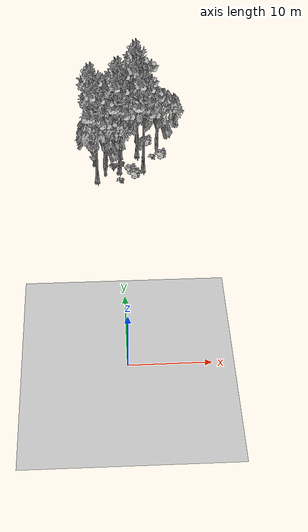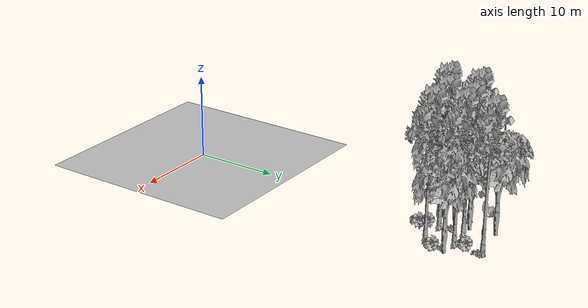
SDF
<sdf version="1.7">
 <world name="default">
  <model name="ground_plane">
   <static>1</static>
   <link name="link">
    <collision name="collision">
     <pose>-50 0 0 0 -0 0</pose>
     <geometry><plane><normal>0 0 1</normal><size>80 80</size></plane></geometry>
     <surface><contact><ode><min_depth>0.01</min_depth><max_vel>0</max_vel></ode></contact></surface>
    </collision>
    <visual name="grass">
     <cast_shadows>0</cast_shadows>
     <geometry>
      <mesh>
       <scale>0.46714285714285714 0.46714285714285714 0.1</scale>
       <uri>file://grass_plane/meshes/grass_plane.dae</uri>
      </mesh>
     </geometry>
    </visual>
   </link>
  </model>
  <model name="Tree 6">
   <static>1</static>
   <pose>5.54850643241091 36.19368127252207 0 1.57079 -0 0</pose>
   <link name="link">
    <collision name="collision">
     <geometry><mesh><scale>3.5 5 3.5</scale><uri>model://tree_2/meshes/tree_2.obj</uri></mesh></geometry>
    </collision>
    <visual name="visual">
     <geometry><mesh><scale>3.5 5 3.5</scale><uri>model://tree_2/meshes/tree_2.obj</uri></mesh></geometry>
    </visual>
   </link>
  </model>
  <model name="Tree 29">
   <static>1</static>
   <pose>0.2843903582047531 35.689766550181815 0 1.57079 -0 0</pose>
   <link name="link">
    <collision name="collision">
     <geometry><mesh><scale>3.5 5 3.5</scale><uri>model://tree_9/meshes/tree_9.obj</uri></mesh></geometry>
    </collision>
    <visual name="visual">
     <geometry><mesh><scale>3.5 5 3.5</scale><uri>model://tree_9/meshes/tree_9.obj</uri></mesh></geometry>
    </visual>
   </link>
  </model>
  <model name="Tree 128">
   <static>1</static>
   <pose>-1.2649494384611657 38.75790974704431 0 1.57079 -0 0</pose>
   <link name="link">
    <collision name="collision">
     <geometry><mesh><scale>3.5 5 3.5</scale><uri>model://tree_2/meshes/tree_2.obj</uri></mesh></geometry>
    </collision>
    <visual name="visual">
     <geometry><mesh><scale>3.5 5 3.5</scale><uri>model://tree_2/meshes/tree_2.obj</uri></mesh></geometry>
    </visual>
   </link>
  </model>
  <model name="Tree 146">
   <static>1</static>
   <pose>2.8871160726819625 39.34626958069252 0 1.57079 -0 0</pose>
   <link name="link">
    <collision name="collision">
     <geometry><mesh><scale>3.5 5 3.5</scale><uri>model://tree_9/meshes/tree_9.obj</uri></mesh></geometry>
    </collision>
    <visual name="visual">
     <geometry><mesh><scale>3.5 5 3.5</scale><uri>model://tree_9/meshes/tree_9.obj</uri></mesh></geometry>
    </visual>
   </link>
  </model>
  <model name="Tree 150">
   <static>1</static>
   <pose>0.07418841122362352 32.618755903432216 0 1.57079 -0 0</pose>
   <link name="link">
    <collision name="collision">
     <geometry><mesh><scale>3.5 5 3.5</scale><uri>model://tree_9/meshes/tree_9.obj</uri></mesh></geometry>
    </collision>
    <visual name="visual">
     <geometry><mesh><scale>3.5 5 3.5</scale><uri>model://tree_9/meshes/tree_9.obj</uri></mesh></geometry>
    </visual>
   </link>
  </model>
  <model name="Tree 151">
   <static>1</static>
   <pose>-3.1617049069283283 30.87712051281109 0 1.57079 -0 0</pose>
   <link name="link">
    <collision name="collision">
     <geometry><mesh><scale>3.5 5 3.5</scale><uri>model://tree_9/meshes/tree_9.obj</uri></mesh></geometry>
    </collision>
    <visual name="visual">
     <geometry><mesh><scale>3.5 5 3.5</scale><uri>model://tree_9/meshes/tree_9.obj</uri></mesh></geometry>
    </visual>
   </link>
  </model>
  <model name="Tree 168">
   <static>1</static>
   <pose>-3.432380097467764 34.47312382363589 0 1.57079 -0 0</pose>
   <link name="link">
    <collision name="collision">
     <geometry><mesh><scale>3.5 5 3.5</scale><uri>model://tree_9/meshes/tree_9.obj</uri></mesh></geometry>
    </collision>
    <visual name="visual">
     <geometry><mesh><scale>3.5 5 3.5</scale><uri>model://tree_9/meshes/tree_9.obj</uri></mesh></geometry>
    </visual>
   </link>
  </model>
  <model name="Tree 217">
   <static>1</static>
   <pose>-0.7691833623099953 35.87514678876724 0 1.57079 -0 0</pose>
   <link name="link">
    <collision name="collision">
     <geometry><mesh><scale>3.5 5 3.5</scale><uri>model://tree_2/meshes/tree_2.obj</uri></mesh></geometry>
    </collision>
    <visual name="visual">
     <geometry><mesh><scale>3.5 5 3.5</scale><uri>model://tree_2/meshes/tree_2.obj</uri></mesh></geometry>
    </visual>
   </link>
  </model>
  <model name="Tree 386">
   <static>1</static>
   <pose>2.7415290600496363 35.917225904051676 0 1.57079 -0 0</pose>
   <link name="link">
    <collision name="collision">
     <geometry><mesh><scale>3.5 5 3.5</scale><uri>model://tree_9/meshes/tree_9.obj</uri></mesh></geometry>
    </collision>
    <visual name="visual">
     <geometry><mesh><scale>3.5 5 3.5</scale><uri>model://tree_9/meshes/tree_9.obj</uri></mesh></geometry>
    </visual>
   </link>
  </model>
  <model name="Tree 524">
   <static>1</static>
   <pose>-1.8874023858698052 33.447720292214655 0 1.57079 -0 0</pose>
   <link name="link">
    <collision name="collision">
     <geometry><mesh><scale>3.5 5 3.5</scale><uri>model://tree_2/meshes/tree_2.obj</uri></mesh></geometry>
    </collision>
    <visual name="visual">
     <geometry><mesh><scale>3.5 5 3.5</scale><uri>model://tree_2/meshes/tree_2.obj</uri></mesh></geometry>
    </visual>
   </link>
  </model>
  <model name="Tree 545">
   <static>1</static>
   <pose>3.498447844496674 32.83100219406958 0 1.57079 -0 0</pose>
   <link name="link">
    <collision name="collision">
     <geometry><mesh><scale>3.5 5 3.5</scale><uri>model://tree_9/meshes/tree_9.obj</uri></mesh></geometry>
    </collision>
    <visual name="visual">
     <geometry><mesh><scale>3.5 5 3.5</scale><uri>model://tree_9/meshes/tree_9.obj</uri></mesh></geometry>
    </visual>
   </link>
  </model>
  <model name="Tree 550">
   <static>1</static>
   <pose>-2.060823348372132 31.746964954063742 0 1.57079 -0 0</pose>
   <link name="link">
    <collision name="collision">
     <geometry><mesh><scale>3.5 5 3.5</scale><uri>model://tree_2/meshes/tree_2.obj</uri></mesh></geometry>
    </collision>
    <visual name="visual">
     <geometry><mesh><scale>3.5 5 3.5</scale><uri>model://tree_2/meshes/tree_2.obj</uri></mesh></geometry>
    </visual>
   </link>
  </model>
  <model name="Bush 65">
   <static>1</static>
   <pose>2.210418340677684 30.92849376650713 0 1.57079 -0 0</pose>
   <link name="link">
    <collision name="collision">
     <geometry><mesh><scale>2 2 2</scale><uri>model://bush_1/meshes/bush_1.obj</uri></mesh></geometry>
     <surface><contact><collide_without_contact>false</collide_without_contact></contact></surface>
    </collision>
    <visual name="visual">
     <geometry><mesh><scale>2 2 2</scale><uri>model://bush_1/meshes/bush_1.obj</uri></mesh></geometry>
    </visual>
   </link>
  </model>
  <model name="Bush 77">
   <static>1</static>
   <pose>3.7626232720319948 39.05539001954233 0 1.57079 -0 0</pose>
   <link name="link">
    <collision name="collision">
     <geometry><mesh><scale>2 2 2</scale><uri>model://bush_2/meshes/bush_2.obj</uri></mesh></geometry>
     <surface><contact><collide_without_contact>false</collide_without_contact></contact></surface>
    </collision>
    <visual name="visual">
     <geometry><mesh><scale>2 2 2</scale><uri>model://bush_2/meshes/bush_2.obj</uri></mesh></geometry>
    </visual>
   </link>
  </model>
  <model name="Bush 111">
   <static>1</static>
   <pose>2.323717399558838 31.449836406152784 0 1.57079 -0 0</pose>
   <link name="link">
    <collision name="collision">
     <geometry><mesh><scale>2 2 2</scale><uri>model://bush_0/meshes/bush_0.obj</uri></mesh></geometry>
     <surface><contact><collide_without_contact>false</collide_without_contact></contact></surface>
    </collision>
    <visual name="visual">
     <geometry><mesh><scale>2 2 2</scale><uri>model://bush_0/meshes/bush_0.obj</uri></mesh></geometry>
    </visual>
   </link>
  </model>
  <model name="Bush 113">
   <static>1</static>
   <pose>4.906750730197274 35.36822307541121 0 1.57079 -0 0</pose>
   <link name="link">
    <collision name="collision">
     <geometry><mesh><scale>2 2 2</scale><uri>model://bush_2/meshes/bush_2.obj</uri></mesh></geometry>
     <surface><contact><collide_without_contact>false</collide_without_contact></contact></surface>
    </collision>
    <visual name="visual">
     <geometry><mesh><scale>2 2 2</scale><uri>model://bush_2/meshes/bush_2.obj</uri></mesh></geometry>
    </visual>
   </link>
  </model>
  <model name="Bush 159">
   <static>1</static>
   <pose>0.15815659230830192 30.62648051716924 0 1.57079 -0 0</pose>
   <link name="link">
    <collision name="collision">
     <geometry><mesh><scale>2 2 2</scale><uri>model://bush_2/meshes/bush_2.obj</uri></mesh></geometry>
     <surface><contact><collide_without_contact>false</collide_without_contact></contact></surface>
    </collision>
    <visual name="visual">
     <geometry><mesh><scale>2 2 2</scale><uri>model://bush_2/meshes/bush_2.obj</uri></mesh></geometry>
    </visual>
   </link>
  </model>
  <model name="Bush 162">
   <static>1</static>
   <pose>1.6636508397426724 31.834069692582048 0 1.57079 -0 0</pose>
   <link name="link">
    <collision name="collision">
     <geometry><mesh><scale>2 2 2</scale><uri>model://bush_1/meshes/bush_1.obj</uri></mesh></geometry>
     <surface><contact><collide_without_contact>false</collide_without_contact></contact></surface>
    </collision>
    <visual name="visual">
     <geometry><mesh><scale>2 2 2</scale><uri>model://bush_1/meshes/bush_1.obj</uri></mesh></geometry>
    </visual>
   </link>
  </model>
  <model name="Bush 242">
   <static>1</static>
   <pose>4.219961870499645 37.76142927620178 0 1.57079 -0 0</pose>
   <link name="link">
    <collision name="collision">
     <geometry><mesh><scale>2 2 2</scale><uri>model://bush_1/meshes/bush_1.obj</uri></mesh></geometry>
     <surface><contact><collide_without_contact>false</collide_without_contact></contact></surface>
    </collision>
    <visual name="visual">
     <geometry><mesh><scale>2 2 2</scale><uri>model://bush_1/meshes/bush_1.obj</uri></mesh></geometry>
    </visual>
   </link>
  </model>
  <model name="Bush 394">
   <static>1</static>
   <pose>-0.7917817633513451 32.663089745051664 0 1.57079 -0 0</pose>
   <link name="link">
    <collision name="collision">
     <geometry><mesh><scale>2 2 2</scale><uri>model://bush_5/meshes/bush_5.obj</uri></mesh></geometry>
     <surface><contact><collide_without_contact>false</collide_without_contact></contact></surface>
    </collision>
    <visual name="visual">
     <geometry><mesh><scale>2 2 2</scale><uri>model://bush_5/meshes/bush_5.obj</uri></mesh></geometry>
    </visual>
   </link>
  </model>
  <model name="Bush 401">
   <static>1</static>
   <pose>0.353441111362244 34.02059014804665 0 1.57079 -0 0</pose>
   <link name="link">
    <collision name="collision">
     <geometry><mesh><scale>2 2 2</scale><uri>model://bush_2/meshes/bush_2.obj</uri></mesh></geometry>
     <surface><contact><collide_without_contact>false</collide_without_contact></contact></surface>
    </collision>
    <visual name="visual">
     <geometry><mesh><scale>2 2 2</scale><uri>model://bush_2/meshes/bush_2.obj</uri></mesh></geometry>
    </visual>
   </link>
  </model>
  <model name="Bush 480">
   <static>1</static>
   <pose>-0.6546005148788723 32.77592841635638 0 1.57079 -0 0</pose>
   <link name="link">
    <collision name="collision">
     <geometry><mesh><scale>2 2 2</scale><uri>model://bush_5/meshes/bush_5.obj</uri></mesh></geometry>
     <surface><contact><collide_without_contact>false</collide_without_contact></contact></surface>
    </collision>
    <visual name="visual">
     <geometry><mesh><scale>2 2 2</scale><uri>model://bush_5/meshes/bush_5.obj</uri></mesh></geometry>
    </visual>
   </link>
  </model>
  <model name="Bush 632">
   <static>1</static>
   <pose>6.176348998767338 34.81911029498632 0 1.57079 -0 0</pose>
   <link name="link">
    <collision name="collision">
     <geometry><mesh><scale>2 2 2</scale><uri>model://bush_1/meshes/bush_1.obj</uri></mesh></geometry>
     <surface><contact><collide_without_contact>false</collide_without_contact></contact></surface>
    </collision>
    <visual name="visual">
     <geometry><mesh><scale>2 2 2</scale><uri>model://bush_1/meshes/bush_1.obj</uri></mesh></geometry>
    </visual>
   </link>
  </model>
 </world>
</sdf>
